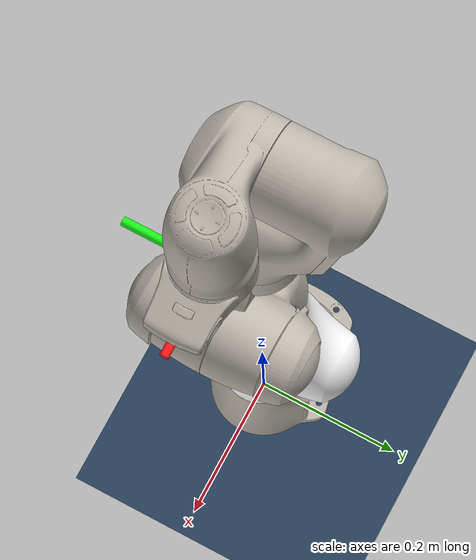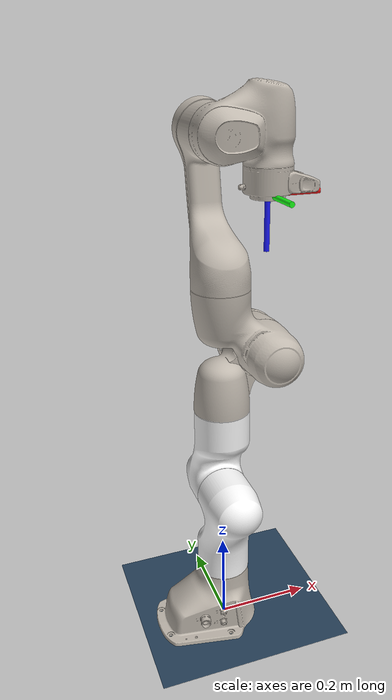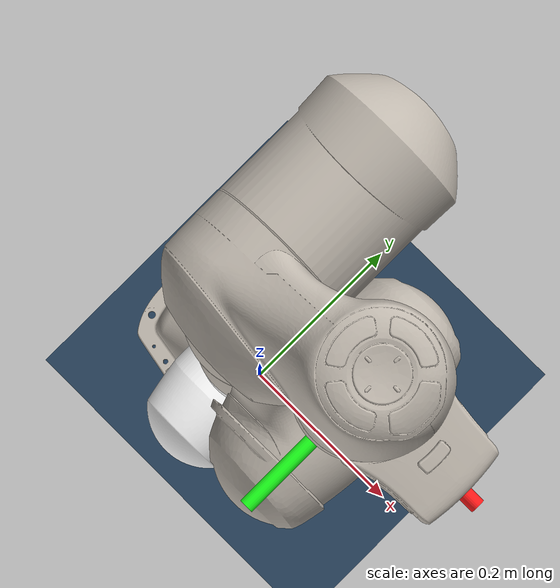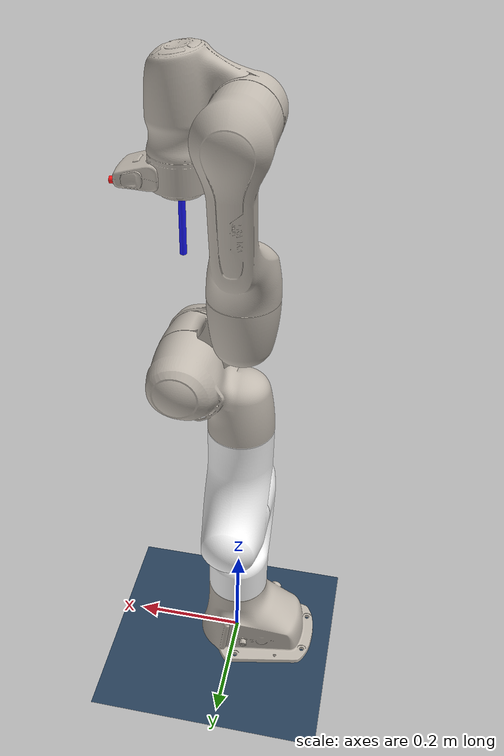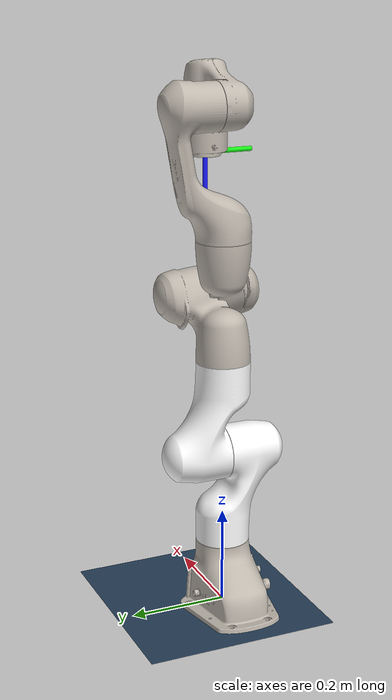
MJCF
<mujoco model="panda">
  <option iterations="50" timestep="0.002" solver="PGS" gravity="0 0 -9.81" />

  <compiler angle="radian" meshdir="meshes" eulerseq="zyx" autolimits="true" />

  <asset>
    <mesh name="link0" file="link0.obj" />
    <mesh name="link1" file="link1.obj" />
    <mesh name="link2" file="link2.obj" />
    <mesh name="link3" file="link3.obj" />
    <mesh name="link4" file="link4.obj" />
    <mesh name="link5" file="link5.obj" />
    <mesh name="link6" file="link6.obj" />
    <mesh name="link7" file="link7.obj" />
    <mesh name="hand" file="hand.obj" />
    <mesh name="finger" file="finger.obj" />
    <texture name="panda" file="texture/panda.png" type="2d" />
    <material name="panda" texture="panda" shininess=".4" specular=".4" />
    <material name="panda_white" rgba="1 1 1 1" shininess="0.4" specular="0.4" />
    <texture name="skybox" type="skybox" builtin="gradient" rgb1="0.2 0.3 0.4" rgb2="0 0 0" width="1000" height="1000" mark="random" random="0.001" markrgb="1 1 1"/>
    <texture type="2d" name="groundplane" builtin="checker" mark="edge" rgb1="0.2 0.3 0.4" rgb2="0.1 0.2 0.3" markrgb="0.8 0.8 0.8" width="1000" height="1000"/>
    <material name="groundplane" texture="groundplane" texuniform="true" texrepeat="5 5" reflectance="0.2"/>
  </asset>

  <worldbody>
    <light directional="true" diffuse="0.4 0.4 0.4" specular="0.1 0.1 0.1" pos="0 0 5.0" dir="0 0 -1" castshadow="false" />
    <light directional="true" diffuse="0.6 0.6 0.6" specular="0.2 0.2 0.2" pos="0 0 4" dir="0 0 -1" />
    <geom name="ground" type="plane" pos="0 0 0" size="100 100 0.001" quat="1 0 0 0" material="groundplane" condim="3" conaffinity="15" />
    <body name="panda_link0">
      <geom type="mesh" material="panda" mesh="link0" condim="1" conaffinity="0"/>
      <inertial pos="-4.1018e-02 -1.4e-04 4.9974e-02" mass="6.29769e-01" fullinertia="3.15e-03 3.88e-03 4.285e-03 8.2904e-07 1.5e-04 8.2299e-06" />
      <body name="panda_link1" pos="0 0 0.333">
        <inertial pos="3.875e-03 2.081e-03 -4.762e-02" mass="4.970684" fullinertia="7.0337e-01 7.0661e-01 9.1170e-03 -1.3900e-04 6.7720e-03 1.9169e-02" />
        <joint name="panda_joint1" pos="0 0 0" axis="0 0 1" limited="true" range="-2.8973 2.8973" damping="0.0665" frictionloss="0.2450" />
        <geom type="mesh" material="panda_white" mesh="link1" condim="1" conaffinity="0"/>
        <body name="panda_link2" pos="0 0 0" quat="0.707107 -0.707107 0 0">
          <inertial pos="-3.141e-03 -2.872e-02 3.495e-03" mass="0.646926" fullinertia="7.9620e-03 2.8110e-02 2.5995e-02 -3.9250e-03 1.0254e-02 7.0400e-04" />
          <joint name="panda_joint2" pos="0 0 0" axis="0 0 1" limited="true" range="-1.7628 1.7628" damping="0.1987" frictionloss="0.1523" />
          <geom type="mesh" material="panda_white" mesh="link2" condim="1" conaffinity="0"/>
          <body name="panda_link3" pos="0 -0.316 0" quat="0.707107 0.707107 0 0">
            <inertial pos="2.7518e-02 3.9252e-02 -6.6502e-02" mass="3.228604" fullinertia="3.7242e-02 3.6155e-02 1.0830e-02 -4.7610e-03 -1.1396e-02 -1.2805e-02" />
            <joint name="panda_joint3" pos="0 0 0" axis="0 0 1" limited="true" range="-2.8973 2.8973" damping="0.0399" frictionloss="0.1827" />
            <geom type="mesh" material="panda" mesh="link3" condim="1" conaffinity="0"/>
            <body name="panda_link4" pos="0.0825 0 0" quat="0.707107 0.707107 0 0">
              <inertial pos="-5.317e-02 1.04419e-01 2.7454e-02" mass="3.587895" fullinertia="2.5853e-02 1.9552e-02 2.8323e-02 7.7960e-03 -1.3320e-03 8.6410e-03" />
              <joint name="panda_joint4" pos="0 0 0" axis="0 0 1" limited="true" range="-3.0718 -0.0698" damping="0.2257" frictionloss="0.3591" />
              <geom type="mesh" material="panda" mesh="link4" condim="1" conaffinity="0"/>
              <body name="panda_link5" pos="-0.0825 0.384 0" quat="0.707107 -0.707107 0 0">
                <inertial pos="-1.1953e-02 4.1065e-02 -3.8437e-02" mass="1.225946" fullinertia="3.5549e-02 2.9474e-02 8.6270e-03 -2.1170e-03 -4.0370e-03 2.2900e-04" />
                <joint name="panda_joint5" pos="0 0 0" axis="0 0 1" limited="true" range="-2.8973 2.8973" damping="0.1023" frictionloss="0.2669" />
                <geom type="mesh" material="panda" mesh="link5" condim="1" conaffinity="0"/>
                <body name="panda_link6" pos="0 0 0" quat="0.707107 0.707107 0 0">
                  <inertial pos="6.0149e-02 -1.4117e-02 -1.0517e-02" mass="1.666555 " fullinertia="1.9640e-03 4.3540e-03 5.4330e-03 1.0900e-04 -1.1580e-03 3.4100e-04" />
                  <joint name="panda_joint6" pos="0 0 0" axis="0 0 1" limited="true" range="-0.0175 3.7525" damping="-0.0132" frictionloss="0.1658" />
                  <geom type="mesh" material="panda" mesh="link6" condim="1" conaffinity="0"/>
                  <body name="panda_link7" pos="0.088 0 0" quat="0.707107 0.707107 0 0">
                    <inertial pos="1.0517e-02 -4.252e-03 6.1597e-02" mass="7.35522e-01" fullinertia="1.2516e-02 1.0027e-02 4.8150e-03 -4.2800e-04 -1.1960e-03 -7.4100e-04" />
                    <joint name="panda_joint7" pos="0 0 0" axis="0 0 1" limited="true" range="-2.8973 2.8973" damping="0.0638" frictionloss="1.2109" />
                    <geom type="mesh" material="panda" mesh="link7" quat="0.9238795 0 0 -0.3826834" condim="1" conaffinity="0"/>
                    <geom type="cylinder" rgba="1 0.1 0.1 1" size="0.005 0.05" pos="0.05 0 0.1" quat="0.7071 0 0.7071 0" contype="0" conaffinity="0"/>
                    <geom type="cylinder" rgba="0.1 1 0.1 1" size="0.005 0.05" pos="0 0.05 0.1" quat="0.7071 0.7071 0 0" contype="0" conaffinity="0"/>
                    <geom type="cylinder" rgba="0.1 0.1 1 1" size="0.005 0.05" pos="0 0 0.15" quat="1 0 0 0" contype="0" conaffinity="0"/>

                  </body>
                </body>
              </body>
            </body>
          </body>
        </body>
      </body>
    </body>
  </worldbody>

  <actuator>
    <motor ctrllimited="true" ctrlrange="-87 87" forcelimited="true" forcerange="-87 87" joint="panda_joint1" name="panda_joint1" />
    <motor ctrllimited="true" ctrlrange="-87 87" forcelimited="true" forcerange="-87 87" joint="panda_joint2" name="panda_joint2" />
    <motor ctrllimited="true" ctrlrange="-87 87" forcelimited="true" forcerange="-87 87" joint="panda_joint3" name="panda_joint3" />
    <motor ctrllimited="true" ctrlrange="-87 87" forcelimited="true" forcerange="-87 87" joint="panda_joint4" name="panda_joint4" />
    <motor ctrllimited="true" ctrlrange="-12 12" forcelimited="true" forcerange="-12 12" joint="panda_joint5" name="panda_joint5" />
    <motor ctrllimited="true" ctrlrange="-12 12" forcelimited="true" forcerange="-12 12" joint="panda_joint6" name="panda_joint6" />
    <motor ctrllimited="true" ctrlrange="-12 12" forcelimited="true" forcerange="-12 12" joint="panda_joint7" name="panda_joint7" />
  </actuator>
</mujoco>
